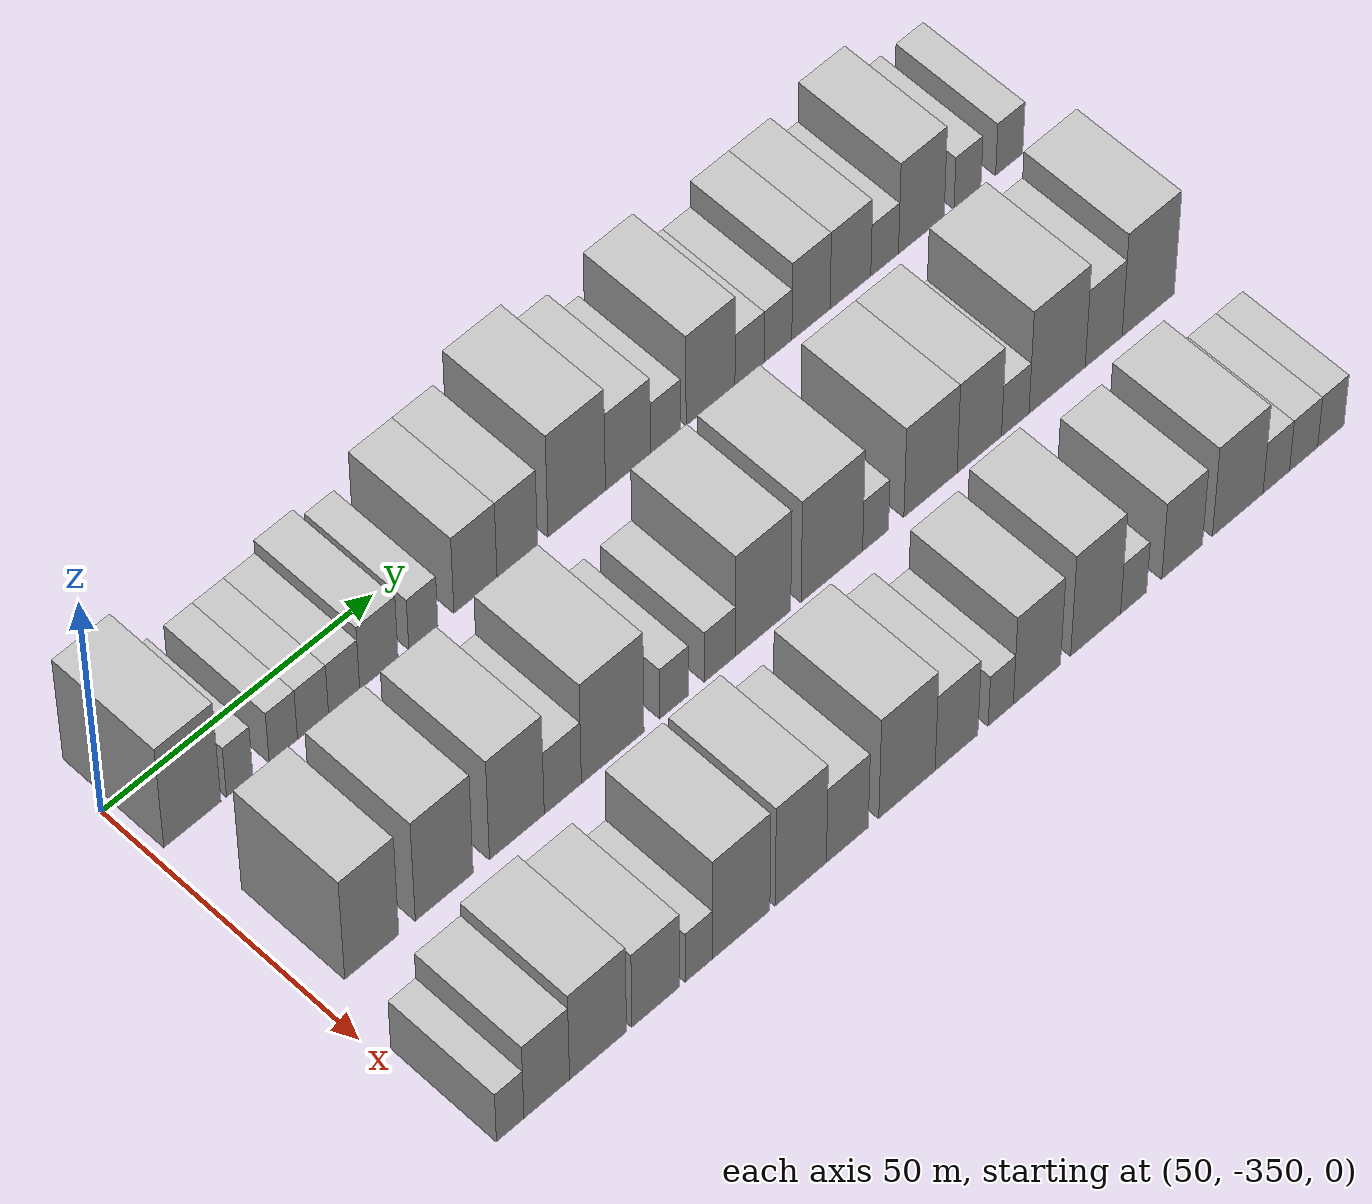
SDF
<sdf version="1.6">
 <world name="default">
  <model name="building_1">
   <static>1</static>
   <pose>50.0000 -342.7937 0 0.000000 0.000000 0.000000</pose>
   <link name="link">
    <pose>0 0 12.00 0 0 0</pose>
    <collision name="collision"><geometry><box><size>20.0000 10.4127 24.0000</size></box></geometry></collision>
    <visual name="visual">
     <cast_shadows>0</cast_shadows>
     <geometry><box><size>20.0000 10.4127 24.0000</size></box></geometry>
     <material>
      <script>
       <uri>model://HANNAS_wall/materials/scripts</uri>
       <uri>model://HANNAS_wall/materials/textures</uri>
       <name>vrc/HANNAS_wall</name>
      </script>
     </material>
    </visual>
   </link>
  </model>
  <model name="building_2">
   <static>1</static>
   <pose>50.0000 -334.1725 0 0.000000 0.000000 0.000000</pose>
   <link name="link">
    <pose>0 0 6.00 0 0 0</pose>
    <collision name="collision"><geometry><box><size>20.0000 4.8296 12.0000</size></box></geometry></collision>
    <visual name="visual">
     <cast_shadows>0</cast_shadows>
     <geometry><box><size>20.0000 4.8296 12.0000</size></box></geometry>
     <material>
      <script>
       <uri>model://HANNAS_wall/materials/scripts</uri>
       <uri>model://HANNAS_wall/materials/textures</uri>
       <name>vrc/HANNAS_wall</name>
      </script>
     </material>
    </visual>
   </link>
  </model>
  <model name="building_3">
   <static>1</static>
   <pose>50.0000 -326.1442 0 0.000000 0.000000 0.000000</pose>
   <link name="link">
    <pose>0 0 6.00 0 0 0</pose>
    <collision name="collision"><geometry><box><size>20.0000 5.2270 12.0000</size></box></geometry></collision>
    <visual name="visual">
     <cast_shadows>0</cast_shadows>
     <geometry><box><size>20.0000 5.2270 12.0000</size></box></geometry>
     <material>
      <script>
       <uri>model://HANNAS_wall/materials/scripts</uri>
       <uri>model://HANNAS_wall/materials/textures</uri>
       <name>vrc/HANNAS_wall</name>
      </script>
     </material>
    </visual>
   </link>
  </model>
  <model name="building_4">
   <static>1</static>
   <pose>50.0000 -320.6596 0 0.000000 0.000000 0.000000</pose>
   <link name="link">
    <pose>0 0 6.00 0 0 0</pose>
    <collision name="collision"><geometry><box><size>20.0000 5.7422 12.0000</size></box></geometry></collision>
    <visual name="visual">
     <cast_shadows>0</cast_shadows>
     <geometry><box><size>20.0000 5.7422 12.0000</size></box></geometry>
     <material>
      <script>
       <uri>model://HANNAS_wall/materials/scripts</uri>
       <uri>model://HANNAS_wall/materials/textures</uri>
       <name>vrc/HANNAS_wall</name>
      </script>
     </material>
    </visual>
   </link>
  </model>
  <model name="building_5">
   <static>1</static>
   <pose>50.0000 -314.8984 0 0.000000 0.000000 0.000000</pose>
   <link name="link">
    <pose>0 0 6.00 0 0 0</pose>
    <collision name="collision"><geometry><box><size>20.0000 5.7800 12.0000</size></box></geometry></collision>
    <visual name="visual">
     <cast_shadows>0</cast_shadows>
     <geometry><box><size>20.0000 5.7800 12.0000</size></box></geometry>
     <material>
      <script>
       <uri>model://HANNAS_wall/materials/scripts</uri>
       <uri>model://HANNAS_wall/materials/textures</uri>
       <name>vrc/HANNAS_wall</name>
      </script>
     </material>
    </visual>
   </link>
  </model>
  <model name="building_6">
   <static>1</static>
   <pose>50.0000 -308.4191 0 0.000000 0.000000 0.000000</pose>
   <link name="link">
    <pose>0 0 7.50 0 0 0</pose>
    <collision name="collision"><geometry><box><size>20.0000 7.1786 15.0000</size></box></geometry></collision>
    <visual name="visual">
     <cast_shadows>0</cast_shadows>
     <geometry><box><size>20.0000 7.1786 15.0000</size></box></geometry>
     <material>
      <script>
       <uri>model://HANNAS_wall/materials/scripts</uri>
       <uri>model://HANNAS_wall/materials/textures</uri>
       <name>vrc/HANNAS_wall</name>
      </script>
     </material>
    </visual>
   </link>
  </model>
  <model name="building_7">
   <static>1</static>
   <pose>50.0000 -300.0968 0 0.000000 0.000000 0.000000</pose>
   <link name="link">
    <pose>0 0 6.00 0 0 0</pose>
    <collision name="collision"><geometry><box><size>20.0000 5.4661 12.0000</size></box></geometry></collision>
    <visual name="visual">
     <cast_shadows>0</cast_shadows>
     <geometry><box><size>20.0000 5.4661 12.0000</size></box></geometry>
     <material>
      <script>
       <uri>model://HANNAS_wall/materials/scripts</uri>
       <uri>model://HANNAS_wall/materials/textures</uri>
       <name>vrc/HANNAS_wall</name>
      </script>
     </material>
    </visual>
   </link>
  </model>
  <model name="building_8">
   <static>1</static>
   <pose>50.0000 -290.2836 0 0.000000 0.000000 0.000000</pose>
   <link name="link">
    <pose>0 0 9.00 0 0 0</pose>
    <collision name="collision"><geometry><box><size>20.0000 8.1602 18.0000</size></box></geometry></collision>
    <visual name="visual">
     <cast_shadows>0</cast_shadows>
     <geometry><box><size>20.0000 8.1602 18.0000</size></box></geometry>
     <material>
      <script>
       <uri>model://HANNAS_wall/materials/scripts</uri>
       <uri>model://HANNAS_wall/materials/textures</uri>
       <name>vrc/HANNAS_wall</name>
      </script>
     </material>
    </visual>
   </link>
  </model>
  <model name="building_9">
   <static>1</static>
   <pose>50.0000 -282.3586 0 0.000000 0.000000 0.000000</pose>
   <link name="link">
    <pose>0 0 9.00 0 0 0</pose>
    <collision name="collision"><geometry><box><size>20.0000 7.6899 18.0000</size></box></geometry></collision>
    <visual name="visual">
     <cast_shadows>0</cast_shadows>
     <geometry><box><size>20.0000 7.6899 18.0000</size></box></geometry>
     <material>
      <script>
       <uri>model://HANNAS_wall/materials/scripts</uri>
       <uri>model://HANNAS_wall/materials/textures</uri>
       <name>vrc/HANNAS_wall</name>
      </script>
     </material>
    </visual>
   </link>
  </model>
  <model name="building_10">
   <static>1</static>
   <pose>50.0000 -271.0136 0 0.000000 0.000000 0.000000</pose>
   <link name="link">
    <pose>0 0 12.00 0 0 0</pose>
    <collision name="collision"><geometry><box><size>20.0000 11.0002 24.0000</size></box></geometry></collision>
    <visual name="visual">
     <cast_shadows>0</cast_shadows>
     <geometry><box><size>20.0000 11.0002 24.0000</size></box></geometry>
     <material>
      <script>
       <uri>model://HANNAS_wall/materials/scripts</uri>
       <uri>model://HANNAS_wall/materials/textures</uri>
       <name>vrc/HANNAS_wall</name>
      </script>
     </material>
    </visual>
   </link>
  </model>
  <model name="building_11">
   <static>1</static>
   <pose>50.0000 -261.1677 0 0.000000 0.000000 0.000000</pose>
   <link name="link">
    <pose>0 0 9.00 0 0 0</pose>
    <collision name="collision"><geometry><box><size>20.0000 8.6915 18.0000</size></box></geometry></collision>
    <visual name="visual">
     <cast_shadows>0</cast_shadows>
     <geometry><box><size>20.0000 8.6915 18.0000</size></box></geometry>
     <material>
      <script>
       <uri>model://HANNAS_wall/materials/scripts</uri>
       <uri>model://HANNAS_wall/materials/textures</uri>
       <name>vrc/HANNAS_wall</name>
      </script>
     </material>
    </visual>
   </link>
  </model>
  <model name="building_12">
   <static>1</static>
   <pose>50.0000 -253.8751 0 0.000000 0.000000 0.000000</pose>
   <link name="link">
    <pose>0 0 6.00 0 0 0</pose>
    <collision name="collision"><geometry><box><size>20.0000 5.8936 12.0000</size></box></geometry></collision>
    <visual name="visual">
     <cast_shadows>0</cast_shadows>
     <geometry><box><size>20.0000 5.8936 12.0000</size></box></geometry>
     <material>
      <script>
       <uri>model://HANNAS_wall/materials/scripts</uri>
       <uri>model://HANNAS_wall/materials/textures</uri>
       <name>vrc/HANNAS_wall</name>
      </script>
     </material>
    </visual>
   </link>
  </model>
  <model name="building_13">
   <static>1</static>
   <pose>50.0000 -245.1650 0 0.000000 0.000000 0.000000</pose>
   <link name="link">
    <pose>0 0 10.50 0 0 0</pose>
    <collision name="collision"><geometry><box><size>20.0000 9.5266 21.0000</size></box></geometry></collision>
    <visual name="visual">
     <cast_shadows>0</cast_shadows>
     <geometry><box><size>20.0000 9.5266 21.0000</size></box></geometry>
     <material>
      <script>
       <uri>model://HANNAS_wall/materials/scripts</uri>
       <uri>model://HANNAS_wall/materials/textures</uri>
       <name>vrc/HANNAS_wall</name>
      </script>
     </material>
    </visual>
   </link>
  </model>
  <model name="building_14">
   <static>1</static>
   <pose>50.0000 -237.5346 0 0.000000 0.000000 0.000000</pose>
   <link name="link">
    <pose>0 0 6.00 0 0 0</pose>
    <collision name="collision"><geometry><box><size>20.0000 5.7343 12.0000</size></box></geometry></collision>
    <visual name="visual">
     <cast_shadows>0</cast_shadows>
     <geometry><box><size>20.0000 5.7343 12.0000</size></box></geometry>
     <material>
      <script>
       <uri>model://HANNAS_wall/materials/scripts</uri>
       <uri>model://HANNAS_wall/materials/textures</uri>
       <name>vrc/HANNAS_wall</name>
      </script>
     </material>
    </visual>
   </link>
  </model>
  <model name="building_15">
   <static>1</static>
   <pose>50.0000 -231.9547 0 0.000000 0.000000 0.000000</pose>
   <link name="link">
    <pose>0 0 6.00 0 0 0</pose>
    <collision name="collision"><geometry><box><size>20.0000 5.4256 12.0000</size></box></geometry></collision>
    <visual name="visual">
     <cast_shadows>0</cast_shadows>
     <geometry><box><size>20.0000 5.4256 12.0000</size></box></geometry>
     <material>
      <script>
       <uri>model://HANNAS_wall/materials/scripts</uri>
       <uri>model://HANNAS_wall/materials/textures</uri>
       <name>vrc/HANNAS_wall</name>
      </script>
     </material>
    </visual>
   </link>
  </model>
  <model name="building_16">
   <static>1</static>
   <pose>50.0000 -225.4672 0 0.000000 0.000000 0.000000</pose>
   <link name="link">
    <pose>0 0 9.00 0 0 0</pose>
    <collision name="collision"><geometry><box><size>20.0000 7.5494 18.0000</size></box></geometry></collision>
    <visual name="visual">
     <cast_shadows>0</cast_shadows>
     <geometry><box><size>20.0000 7.5494 18.0000</size></box></geometry>
     <material>
      <script>
       <uri>model://HANNAS_wall/materials/scripts</uri>
       <uri>model://HANNAS_wall/materials/textures</uri>
       <name>vrc/HANNAS_wall</name>
      </script>
     </material>
    </visual>
   </link>
  </model>
  <model name="building_17">
   <static>1</static>
   <pose>50.0000 -217.6418 0 0.000000 0.000000 0.000000</pose>
   <link name="link">
    <pose>0 0 9.00 0 0 0</pose>
    <collision name="collision"><geometry><box><size>20.0000 8.1012 18.0000</size></box></geometry></collision>
    <visual name="visual">
     <cast_shadows>0</cast_shadows>
     <geometry><box><size>20.0000 8.1012 18.0000</size></box></geometry>
     <material>
      <script>
       <uri>model://HANNAS_wall/materials/scripts</uri>
       <uri>model://HANNAS_wall/materials/textures</uri>
       <name>vrc/HANNAS_wall</name>
      </script>
     </material>
    </visual>
   </link>
  </model>
  <model name="building_18">
   <static>1</static>
   <pose>50.0000 -210.8297 0 0.000000 0.000000 0.000000</pose>
   <link name="link">
    <pose>0 0 6.00 0 0 0</pose>
    <collision name="collision"><geometry><box><size>20.0000 5.5230 12.0000</size></box></geometry></collision>
    <visual name="visual">
     <cast_shadows>0</cast_shadows>
     <geometry><box><size>20.0000 5.5230 12.0000</size></box></geometry>
     <material>
      <script>
       <uri>model://HANNAS_wall/materials/scripts</uri>
       <uri>model://HANNAS_wall/materials/textures</uri>
       <name>vrc/HANNAS_wall</name>
      </script>
     </material>
    </visual>
   </link>
  </model>
  <model name="building_19">
   <static>1</static>
   <pose>50.0000 -203.4928 0 0.000000 0.000000 0.000000</pose>
   <link name="link">
    <pose>0 0 10.50 0 0 0</pose>
    <collision name="collision"><geometry><box><size>20.0000 9.1509 21.0000</size></box></geometry></collision>
    <visual name="visual">
     <cast_shadows>0</cast_shadows>
     <geometry><box><size>20.0000 9.1509 21.0000</size></box></geometry>
     <material>
      <script>
       <uri>model://HANNAS_wall/materials/scripts</uri>
       <uri>model://HANNAS_wall/materials/textures</uri>
       <name>vrc/HANNAS_wall</name>
      </script>
     </material>
    </visual>
   </link>
  </model>
  <model name="building_20">
   <static>1</static>
   <pose>50.0000 -194.2087 0 0.000000 0.000000 0.000000</pose>
   <link name="link">
    <pose>0 0 6.00 0 0 0</pose>
    <collision name="collision"><geometry><box><size>20.0000 5.4173 12.0000</size></box></geometry></collision>
    <visual name="visual">
     <cast_shadows>0</cast_shadows>
     <geometry><box><size>20.0000 5.4173 12.0000</size></box></geometry>
     <material>
      <script>
       <uri>model://HANNAS_wall/materials/scripts</uri>
       <uri>model://HANNAS_wall/materials/textures</uri>
       <name>vrc/HANNAS_wall</name>
      </script>
     </material>
    </visual>
   </link>
  </model>
  <model name="building_21">
   <static>1</static>
   <pose>50.0000 -185.7538 0 0.000000 0.000000 0.000000</pose>
   <link name="link">
    <pose>0 0 6.00 0 0 0</pose>
    <collision name="collision"><geometry><box><size>20.0000 5.4925 12.0000</size></box></geometry></collision>
    <visual name="visual">
     <cast_shadows>0</cast_shadows>
     <geometry><box><size>20.0000 5.4925 12.0000</size></box></geometry>
     <material>
      <script>
       <uri>model://HANNAS_wall/materials/scripts</uri>
       <uri>model://HANNAS_wall/materials/textures</uri>
       <name>vrc/HANNAS_wall</name>
      </script>
     </material>
    </visual>
   </link>
  </model>
  <model name="building_79">
   <static>1</static>
   <pose>82.0000 -340.0592 0 0.000000 0.000000 0.000000</pose>
   <link name="link">
    <pose>0 0 12.00 0 0 0</pose>
    <collision name="collision"><geometry><box><size>20.0000 9.8815 24.0000</size></box></geometry></collision>
    <visual name="visual">
     <cast_shadows>0</cast_shadows>
     <geometry><box><size>20.0000 9.8815 24.0000</size></box></geometry>
     <material>
      <script>
       <uri>model://HANNAS_wall/materials/scripts</uri>
       <uri>model://HANNAS_wall/materials/textures</uri>
       <name>vrc/HANNAS_wall</name>
      </script>
     </material>
    </visual>
   </link>
  </model>
  <model name="building_80">
   <static>1</static>
   <pose>82.0000 -326.7852 0 0.000000 0.000000 0.000000</pose>
   <link name="link">
    <pose>0 0 12.00 0 0 0</pose>
    <collision name="collision"><geometry><box><size>20.0000 10.6666 24.0000</size></box></geometry></collision>
    <visual name="visual">
     <cast_shadows>0</cast_shadows>
     <geometry><box><size>20.0000 10.6666 24.0000</size></box></geometry>
     <material>
      <script>
       <uri>model://HANNAS_wall/materials/scripts</uri>
       <uri>model://HANNAS_wall/materials/textures</uri>
       <name>vrc/HANNAS_wall</name>
      </script>
     </material>
    </visual>
   </link>
  </model>
  <model name="building_81">
   <static>1</static>
   <pose>82.0000 -313.3594 0 0.000000 0.000000 0.000000</pose>
   <link name="link">
    <pose>0 0 12.00 0 0 0</pose>
    <collision name="collision"><geometry><box><size>20.0000 10.1849 24.0000</size></box></geometry></collision>
    <visual name="visual">
     <cast_shadows>0</cast_shadows>
     <geometry><box><size>20.0000 10.1849 24.0000</size></box></geometry>
     <material>
      <script>
       <uri>model://HANNAS_wall/materials/scripts</uri>
       <uri>model://HANNAS_wall/materials/textures</uri>
       <name>vrc/HANNAS_wall</name>
      </script>
     </material>
    </visual>
   </link>
  </model>
  <model name="building_82">
   <static>1</static>
   <pose>82.0000 -304.7971 0 0.000000 0.000000 0.000000</pose>
   <link name="link">
    <pose>0 0 7.50 0 0 0</pose>
    <collision name="collision"><geometry><box><size>20.0000 6.9398 15.0000</size></box></geometry></collision>
    <visual name="visual">
     <cast_shadows>0</cast_shadows>
     <geometry><box><size>20.0000 6.9398 15.0000</size></box></geometry>
     <material>
      <script>
       <uri>model://HANNAS_wall/materials/scripts</uri>
       <uri>model://HANNAS_wall/materials/textures</uri>
       <name>vrc/HANNAS_wall</name>
      </script>
     </material>
    </visual>
   </link>
  </model>
  <model name="building_83">
   <static>1</static>
   <pose>82.0000 -295.4316 0 0.000000 0.000000 0.000000</pose>
   <link name="link">
    <pose>0 0 12.00 0 0 0</pose>
    <collision name="collision"><geometry><box><size>20.0000 11.7912 24.0000</size></box></geometry></collision>
    <visual name="visual">
     <cast_shadows>0</cast_shadows>
     <geometry><box><size>20.0000 11.7912 24.0000</size></box></geometry>
     <material>
      <script>
       <uri>model://HANNAS_wall/materials/scripts</uri>
       <uri>model://HANNAS_wall/materials/textures</uri>
       <name>vrc/HANNAS_wall</name>
      </script>
     </material>
    </visual>
   </link>
  </model>
  <model name="building_84">
   <static>1</static>
   <pose>82.0000 -283.8098 0 0.000000 0.000000 0.000000</pose>
   <link name="link">
    <pose>0 0 6.00 0 0 0</pose>
    <collision name="collision"><geometry><box><size>20.0000 5.4525 12.0000</size></box></geometry></collision>
    <visual name="visual">
     <cast_shadows>0</cast_shadows>
     <geometry><box><size>20.0000 5.4525 12.0000</size></box></geometry>
     <material>
      <script>
       <uri>model://HANNAS_wall/materials/scripts</uri>
       <uri>model://HANNAS_wall/materials/textures</uri>
       <name>vrc/HANNAS_wall</name>
      </script>
     </material>
    </visual>
   </link>
  </model>
  <model name="building_85">
   <static>1</static>
   <pose>82.0000 -275.1099 0 0.000000 0.000000 0.000000</pose>
   <link name="link">
    <pose>0 0 6.00 0 0 0</pose>
    <collision name="collision"><geometry><box><size>20.0000 5.9472 12.0000</size></box></geometry></collision>
    <visual name="visual">
     <cast_shadows>0</cast_shadows>
     <geometry><box><size>20.0000 5.9472 12.0000</size></box></geometry>
     <material>
      <script>
       <uri>model://HANNAS_wall/materials/scripts</uri>
       <uri>model://HANNAS_wall/materials/textures</uri>
       <name>vrc/HANNAS_wall</name>
      </script>
     </material>
    </visual>
   </link>
  </model>
  <model name="building_86">
   <static>1</static>
   <pose>82.0000 -266.8457 0 0.000000 0.000000 0.000000</pose>
   <link name="link">
    <pose>0 0 12.00 0 0 0</pose>
    <collision name="collision"><geometry><box><size>20.0000 10.5811 24.0000</size></box></geometry></collision>
    <visual name="visual">
     <cast_shadows>0</cast_shadows>
     <geometry><box><size>20.0000 10.5811 24.0000</size></box></geometry>
     <material>
      <script>
       <uri>model://HANNAS_wall/materials/scripts</uri>
       <uri>model://HANNAS_wall/materials/textures</uri>
       <name>vrc/HANNAS_wall</name>
      </script>
     </material>
    </visual>
   </link>
  </model>
  <model name="building_87">
   <static>1</static>
   <pose>82.0000 -253.5846 0 0.000000 0.000000 0.000000</pose>
   <link name="link">
    <pose>0 0 12.00 0 0 0</pose>
    <collision name="collision"><geometry><box><size>20.0000 11.9411 24.0000</size></box></geometry></collision>
    <visual name="visual">
     <cast_shadows>0</cast_shadows>
     <geometry><box><size>20.0000 11.9411 24.0000</size></box></geometry>
     <material>
      <script>
       <uri>model://HANNAS_wall/materials/scripts</uri>
       <uri>model://HANNAS_wall/materials/textures</uri>
       <name>vrc/HANNAS_wall</name>
      </script>
     </material>
    </visual>
   </link>
  </model>
  <model name="building_88">
   <static>1</static>
   <pose>82.0000 -245.0876 0 0.000000 0.000000 0.000000</pose>
   <link name="link">
    <pose>0 0 6.00 0 0 0</pose>
    <collision name="collision"><geometry><box><size>20.0000 5.0531 12.0000</size></box></geometry></collision>
    <visual name="visual">
     <cast_shadows>0</cast_shadows>
     <geometry><box><size>20.0000 5.0531 12.0000</size></box></geometry>
     <material>
      <script>
       <uri>model://HANNAS_wall/materials/scripts</uri>
       <uri>model://HANNAS_wall/materials/textures</uri>
       <name>vrc/HANNAS_wall</name>
      </script>
     </material>
    </visual>
   </link>
  </model>
  <model name="building_89">
   <static>1</static>
   <pose>82.0000 -234.3371 0 0.000000 0.000000 0.000000</pose>
   <link name="link">
    <pose>0 0 10.50 0 0 0</pose>
    <collision name="collision"><geometry><box><size>20.0000 10.4478 21.0000</size></box></geometry></collision>
    <visual name="visual">
     <cast_shadows>0</cast_shadows>
     <geometry><box><size>20.0000 10.4478 21.0000</size></box></geometry>
     <material>
      <script>
       <uri>model://HANNAS_wall/materials/scripts</uri>
       <uri>model://HANNAS_wall/materials/textures</uri>
       <name>vrc/HANNAS_wall</name>
      </script>
     </material>
    </visual>
   </link>
  </model>
  <model name="building_90">
   <static>1</static>
   <pose>82.0000 -224.7203 0 0.000000 0.000000 0.000000</pose>
   <link name="link">
    <pose>0 0 10.50 0 0 0</pose>
    <collision name="collision"><geometry><box><size>20.0000 8.7859 21.0000</size></box></geometry></collision>
    <visual name="visual">
     <cast_shadows>0</cast_shadows>
     <geometry><box><size>20.0000 8.7859 21.0000</size></box></geometry>
     <material>
      <script>
       <uri>model://HANNAS_wall/materials/scripts</uri>
       <uri>model://HANNAS_wall/materials/textures</uri>
       <name>vrc/HANNAS_wall</name>
      </script>
     </material>
    </visual>
   </link>
  </model>
  <model name="building_91">
   <static>1</static>
   <pose>82.0000 -217.5975 0 0.000000 0.000000 0.000000</pose>
   <link name="link">
    <pose>0 0 6.00 0 0 0</pose>
    <collision name="collision"><geometry><box><size>20.0000 5.4596 12.0000</size></box></geometry></collision>
    <visual name="visual">
     <cast_shadows>0</cast_shadows>
     <geometry><box><size>20.0000 5.4596 12.0000</size></box></geometry>
     <material>
      <script>
       <uri>model://HANNAS_wall/materials/scripts</uri>
       <uri>model://HANNAS_wall/materials/textures</uri>
       <name>vrc/HANNAS_wall</name>
      </script>
     </material>
    </visual>
   </link>
  </model>
  <model name="building_92">
   <static>1</static>
   <pose>82.0000 -209.2416 0 0.000000 0.000000 0.000000</pose>
   <link name="link">
    <pose>0 0 12.00 0 0 0</pose>
    <collision name="collision"><geometry><box><size>20.0000 11.2521 24.0000</size></box></geometry></collision>
    <visual name="visual">
     <cast_shadows>0</cast_shadows>
     <geometry><box><size>20.0000 11.2521 24.0000</size></box></geometry>
     <material>
      <script>
       <uri>model://HANNAS_wall/materials/scripts</uri>
       <uri>model://HANNAS_wall/materials/textures</uri>
       <name>vrc/HANNAS_wall</name>
      </script>
     </material>
    </visual>
   </link>
  </model>
  <model name="building_93">
   <static>1</static>
   <pose>82.0000 -199.9078 0 0.000000 0.000000 0.000000</pose>
   <link name="link">
    <pose>0 0 9.00 0 0 0</pose>
    <collision name="collision"><geometry><box><size>20.0000 7.4155 18.0000</size></box></geometry></collision>
    <visual name="visual">
     <cast_shadows>0</cast_shadows>
     <geometry><box><size>20.0000 7.4155 18.0000</size></box></geometry>
     <material>
      <script>
       <uri>model://HANNAS_wall/materials/scripts</uri>
       <uri>model://HANNAS_wall/materials/textures</uri>
       <name>vrc/HANNAS_wall</name>
      </script>
     </material>
    </visual>
   </link>
  </model>
  <model name="building_94">
   <static>1</static>
   <pose>82.0000 -190.9318 0 0.000000 0.000000 0.000000</pose>
   <link name="link">
    <pose>0 0 12.00 0 0 0</pose>
    <collision name="collision"><geometry><box><size>20.0000 10.5365 24.0000</size></box></geometry></collision>
    <visual name="visual">
     <cast_shadows>0</cast_shadows>
     <geometry><box><size>20.0000 10.5365 24.0000</size></box></geometry>
     <material>
      <script>
       <uri>model://HANNAS_wall/materials/scripts</uri>
       <uri>model://HANNAS_wall/materials/textures</uri>
       <name>vrc/HANNAS_wall</name>
      </script>
     </material>
    </visual>
   </link>
  </model>
  <model name="building_153">
   <static>1</static>
   <pose>114.0000 -345.4976 0 0.000000 0.000000 0.000000</pose>
   <link name="link">
    <pose>0 0 6.00 0 0 0</pose>
    <collision name="collision"><geometry><box><size>20.0000 5.0047 12.0000</size></box></geometry></collision>
    <visual name="visual">
     <cast_shadows>0</cast_shadows>
     <geometry><box><size>20.0000 5.0047 12.0000</size></box></geometry>
     <material>
      <script>
       <uri>model://HANNAS_wall/materials/scripts</uri>
       <uri>model://HANNAS_wall/materials/textures</uri>
       <name>vrc/HANNAS_wall</name>
      </script>
     </material>
    </visual>
   </link>
  </model>
  <model name="building_154">
   <static>1</static>
   <pose>114.0000 -338.8361 0 0.000000 0.000000 0.000000</pose>
   <link name="link">
    <pose>0 0 9.00 0 0 0</pose>
    <collision name="collision"><geometry><box><size>20.0000 8.3183 18.0000</size></box></geometry></collision>
    <visual name="visual">
     <cast_shadows>0</cast_shadows>
     <geometry><box><size>20.0000 8.3183 18.0000</size></box></geometry>
     <material>
      <script>
       <uri>model://HANNAS_wall/materials/scripts</uri>
       <uri>model://HANNAS_wall/materials/textures</uri>
       <name>vrc/HANNAS_wall</name>
      </script>
     </material>
    </visual>
   </link>
  </model>
  <model name="building_155">
   <static>1</static>
   <pose>114.0000 -329.4505 0 0.000000 0.000000 0.000000</pose>
   <link name="link">
    <pose>0 0 10.50 0 0 0</pose>
    <collision name="collision"><geometry><box><size>20.0000 10.4529 21.0000</size></box></geometry></collision>
    <visual name="visual">
     <cast_shadows>0</cast_shadows>
     <geometry><box><size>20.0000 10.4529 21.0000</size></box></geometry>
     <material>
      <script>
       <uri>model://HANNAS_wall/materials/scripts</uri>
       <uri>model://HANNAS_wall/materials/textures</uri>
       <name>vrc/HANNAS_wall</name>
      </script>
     </material>
    </visual>
   </link>
  </model>
  <model name="building_156">
   <static>1</static>
   <pose>114.0000 -318.7933 0 0.000000 0.000000 0.000000</pose>
   <link name="link">
    <pose>0 0 9.00 0 0 0</pose>
    <collision name="collision"><geometry><box><size>20.0000 8.8615 18.0000</size></box></geometry></collision>
    <visual name="visual">
     <cast_shadows>0</cast_shadows>
     <geometry><box><size>20.0000 8.8615 18.0000</size></box></geometry>
     <material>
      <script>
       <uri>model://HANNAS_wall/materials/scripts</uri>
       <uri>model://HANNAS_wall/materials/textures</uri>
       <name>vrc/HANNAS_wall</name>
      </script>
     </material>
    </visual>
   </link>
  </model>
  <model name="building_157">
   <static>1</static>
   <pose>114.0000 -310.8204 0 0.000000 0.000000 0.000000</pose>
   <link name="link">
    <pose>0 0 6.00 0 0 0</pose>
    <collision name="collision"><geometry><box><size>20.0000 5.0845 12.0000</size></box></geometry></collision>
    <visual name="visual">
     <cast_shadows>0</cast_shadows>
     <geometry><box><size>20.0000 5.0845 12.0000</size></box></geometry>
     <material>
      <script>
       <uri>model://HANNAS_wall/materials/scripts</uri>
       <uri>model://HANNAS_wall/materials/textures</uri>
       <name>vrc/HANNAS_wall</name>
      </script>
     </material>
    </visual>
   </link>
  </model>
  <model name="building_158">
   <static>1</static>
   <pose>114.0000 -302.9145 0 0.000000 0.000000 0.000000</pose>
   <link name="link">
    <pose>0 0 12.00 0 0 0</pose>
    <collision name="collision"><geometry><box><size>20.0000 10.7272 24.0000</size></box></geometry></collision>
    <visual name="visual">
     <cast_shadows>0</cast_shadows>
     <geometry><box><size>20.0000 10.7272 24.0000</size></box></geometry>
     <material>
      <script>
       <uri>model://HANNAS_wall/materials/scripts</uri>
       <uri>model://HANNAS_wall/materials/textures</uri>
       <name>vrc/HANNAS_wall</name>
      </script>
     </material>
    </visual>
   </link>
  </model>
  <model name="building_159">
   <static>1</static>
   <pose>114.0000 -291.7232 0 0.000000 0.000000 0.000000</pose>
   <link name="link">
    <pose>0 0 12.00 0 0 0</pose>
    <collision name="collision"><geometry><box><size>20.0000 9.6556 24.0000</size></box></geometry></collision>
    <visual name="visual">
     <cast_shadows>0</cast_shadows>
     <geometry><box><size>20.0000 9.6556 24.0000</size></box></geometry>
     <material>
      <script>
       <uri>model://HANNAS_wall/materials/scripts</uri>
       <uri>model://HANNAS_wall/materials/textures</uri>
       <name>vrc/HANNAS_wall</name>
      </script>
     </material>
    </visual>
   </link>
  </model>
  <model name="building_160">
   <static>1</static>
   <pose>114.0000 -282.9194 0 0.000000 0.000000 0.000000</pose>
   <link name="link">
    <pose>0 0 9.00 0 0 0</pose>
    <collision name="collision"><geometry><box><size>20.0000 7.9520 18.0000</size></box></geometry></collision>
    <visual name="visual">
     <cast_shadows>0</cast_shadows>
     <geometry><box><size>20.0000 7.9520 18.0000</size></box></geometry>
     <material>
      <script>
       <uri>model://HANNAS_wall/materials/scripts</uri>
       <uri>model://HANNAS_wall/materials/textures</uri>
       <name>vrc/HANNAS_wall</name>
      </script>
     </material>
    </visual>
   </link>
  </model>
  <model name="building_161">
   <static>1</static>
   <pose>114.0000 -271.5538 0 0.000000 0.000000 0.000000</pose>
   <link name="link">
    <pose>0 0 12.00 0 0 0</pose>
    <collision name="collision"><geometry><box><size>20.0000 10.7790 24.0000</size></box></geometry></collision>
    <visual name="visual">
     <cast_shadows>0</cast_shadows>
     <geometry><box><size>20.0000 10.7790 24.0000</size></box></geometry>
     <material>
      <script>
       <uri>model://HANNAS_wall/materials/scripts</uri>
       <uri>model://HANNAS_wall/materials/textures</uri>
       <name>vrc/HANNAS_wall</name>
      </script>
     </material>
    </visual>
   </link>
  </model>
  <model name="building_162">
   <static>1</static>
   <pose>114.0000 -262.0412 0 0.000000 0.000000 0.000000</pose>
   <link name="link">
    <pose>0 0 9.00 0 0 0</pose>
    <collision name="collision"><geometry><box><size>20.0000 8.2462 18.0000</size></box></geometry></collision>
    <visual name="visual">
     <cast_shadows>0</cast_shadows>
     <geometry><box><size>20.0000 8.2462 18.0000</size></box></geometry>
     <material>
      <script>
       <uri>model://HANNAS_wall/materials/scripts</uri>
       <uri>model://HANNAS_wall/materials/textures</uri>
       <name>vrc/HANNAS_wall</name>
      </script>
     </material>
    </visual>
   </link>
  </model>
  <model name="building_163">
   <static>1</static>
   <pose>114.0000 -253.4871 0 0.000000 0.000000 0.000000</pose>
   <link name="link">
    <pose>0 0 6.00 0 0 0</pose>
    <collision name="collision"><geometry><box><size>20.0000 4.8620 12.0000</size></box></geometry></collision>
    <visual name="visual">
     <cast_shadows>0</cast_shadows>
     <geometry><box><size>20.0000 4.8620 12.0000</size></box></geometry>
     <material>
      <script>
       <uri>model://HANNAS_wall/materials/scripts</uri>
       <uri>model://HANNAS_wall/materials/textures</uri>
       <name>vrc/HANNAS_wall</name>
      </script>
     </material>
    </visual>
   </link>
  </model>
  <model name="building_164">
   <static>1</static>
   <pose>114.0000 -246.4592 0 0.000000 0.000000 0.000000</pose>
   <link name="link">
    <pose>0 0 10.50 0 0 0</pose>
    <collision name="collision"><geometry><box><size>20.0000 9.1939 21.0000</size></box></geometry></collision>
    <visual name="visual">
     <cast_shadows>0</cast_shadows>
     <geometry><box><size>20.0000 9.1939 21.0000</size></box></geometry>
     <material>
      <script>
       <uri>model://HANNAS_wall/materials/scripts</uri>
       <uri>model://HANNAS_wall/materials/textures</uri>
       <name>vrc/HANNAS_wall</name>
      </script>
     </material>
    </visual>
   </link>
  </model>
  <model name="building_165">
   <static>1</static>
   <pose>114.0000 -234.9627 0 0.000000 0.000000 0.000000</pose>
   <link name="link">
    <pose>0 0 12.00 0 0 0</pose>
    <collision name="collision"><geometry><box><size>20.0000 9.7991 24.0000</size></box></geometry></collision>
    <visual name="visual">
     <cast_shadows>0</cast_shadows>
     <geometry><box><size>20.0000 9.7991 24.0000</size></box></geometry>
     <material>
      <script>
       <uri>model://HANNAS_wall/materials/scripts</uri>
       <uri>model://HANNAS_wall/materials/textures</uri>
       <name>vrc/HANNAS_wall</name>
      </script>
     </material>
    </visual>
   </link>
  </model>
  <model name="building_166">
   <static>1</static>
   <pose>114.0000 -227.4890 0 0.000000 0.000000 0.000000</pose>
   <link name="link">
    <pose>0 0 6.00 0 0 0</pose>
    <collision name="collision"><geometry><box><size>20.0000 5.1484 12.0000</size></box></geometry></collision>
    <visual name="visual">
     <cast_shadows>0</cast_shadows>
     <geometry><box><size>20.0000 5.1484 12.0000</size></box></geometry>
     <material>
      <script>
       <uri>model://HANNAS_wall/materials/scripts</uri>
       <uri>model://HANNAS_wall/materials/textures</uri>
       <name>vrc/HANNAS_wall</name>
      </script>
     </material>
    </visual>
   </link>
  </model>
  <model name="building_167">
   <static>1</static>
   <pose>114.0000 -217.8749 0 0.000000 0.000000 0.000000</pose>
   <link name="link">
    <pose>0 0 9.00 0 0 0</pose>
    <collision name="collision"><geometry><box><size>20.0000 8.0796 18.0000</size></box></geometry></collision>
    <visual name="visual">
     <cast_shadows>0</cast_shadows>
     <geometry><box><size>20.0000 8.0796 18.0000</size></box></geometry>
     <material>
      <script>
       <uri>model://HANNAS_wall/materials/scripts</uri>
       <uri>model://HANNAS_wall/materials/textures</uri>
       <name>vrc/HANNAS_wall</name>
      </script>
     </material>
    </visual>
   </link>
  </model>
  <model name="building_168">
   <static>1</static>
   <pose>114.0000 -206.7710 0 0.000000 0.000000 0.000000</pose>
   <link name="link">
    <pose>0 0 10.50 0 0 0</pose>
    <collision name="collision"><geometry><box><size>20.0000 10.1282 21.0000</size></box></geometry></collision>
    <visual name="visual">
     <cast_shadows>0</cast_shadows>
     <geometry><box><size>20.0000 10.1282 21.0000</size></box></geometry>
     <material>
      <script>
       <uri>model://HANNAS_wall/materials/scripts</uri>
       <uri>model://HANNAS_wall/materials/textures</uri>
       <name>vrc/HANNAS_wall</name>
      </script>
     </material>
    </visual>
   </link>
  </model>
  <model name="building_169">
   <static>1</static>
   <pose>114.0000 -199.0337 0 0.000000 0.000000 0.000000</pose>
   <link name="link">
    <pose>0 0 6.00 0 0 0</pose>
    <collision name="collision"><geometry><box><size>20.0000 5.3463 12.0000</size></box></geometry></collision>
    <visual name="visual">
     <cast_shadows>0</cast_shadows>
     <geometry><box><size>20.0000 5.3463 12.0000</size></box></geometry>
     <material>
      <script>
       <uri>model://HANNAS_wall/materials/scripts</uri>
       <uri>model://HANNAS_wall/materials/textures</uri>
       <name>vrc/HANNAS_wall</name>
      </script>
     </material>
    </visual>
   </link>
  </model>
  <model name="building_170">
   <static>1</static>
   <pose>114.0000 -193.5147 0 0.000000 0.000000 0.000000</pose>
   <link name="link">
    <pose>0 0 6.00 0 0 0</pose>
    <collision name="collision"><geometry><box><size>20.0000 5.6919 12.0000</size></box></geometry></collision>
    <visual name="visual">
     <cast_shadows>0</cast_shadows>
     <geometry><box><size>20.0000 5.6919 12.0000</size></box></geometry>
     <material>
      <script>
       <uri>model://HANNAS_wall/materials/scripts</uri>
       <uri>model://HANNAS_wall/materials/textures</uri>
       <name>vrc/HANNAS_wall</name>
      </script>
     </material>
    </visual>
   </link>
  </model>
  <model name="building_171">
   <static>1</static>
   <pose>114.0000 -188.0011 0 0.000000 0.000000 0.000000</pose>
   <link name="link">
    <pose>0 0 6.00 0 0 0</pose>
    <collision name="collision"><geometry><box><size>20.0000 5.3353 12.0000</size></box></geometry></collision>
    <visual name="visual">
     <cast_shadows>0</cast_shadows>
     <geometry><box><size>20.0000 5.3353 12.0000</size></box></geometry>
     <material>
      <script>
       <uri>model://HANNAS_wall/materials/scripts</uri>
       <uri>model://HANNAS_wall/materials/textures</uri>
       <name>vrc/HANNAS_wall</name>
      </script>
     </material>
    </visual>
   </link>
  </model>
 </world>
</sdf>
